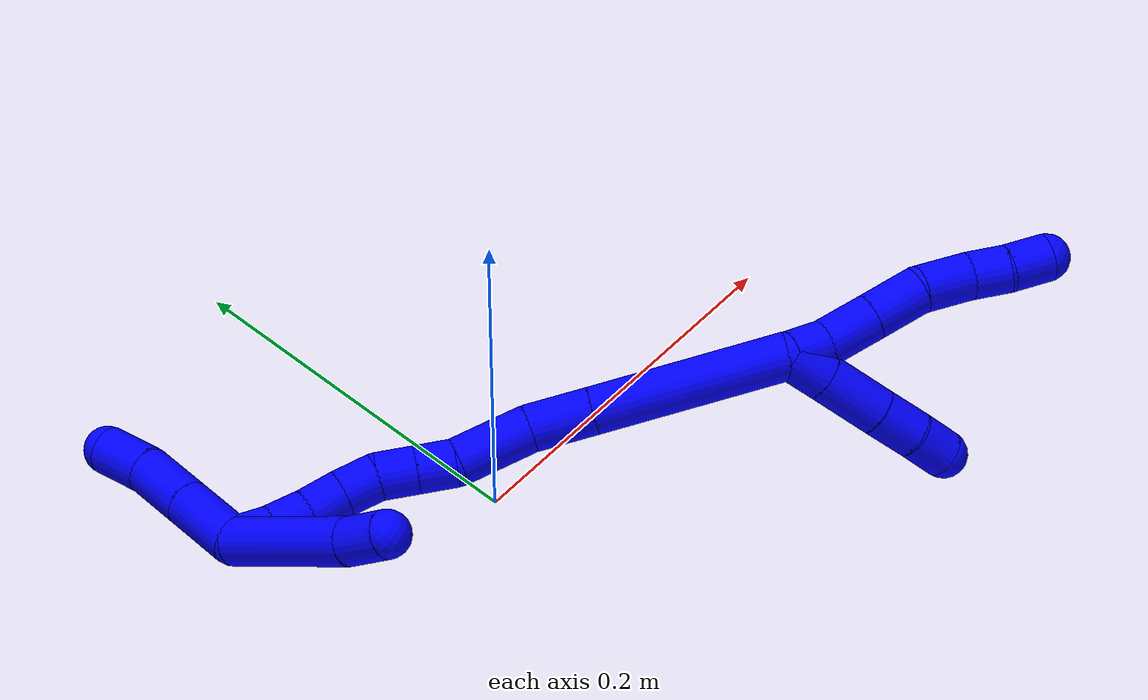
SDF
<sdf version="1.7">
 <world name="default">
  <model name="1">
   <static>0</static>
   <link name="1">
    <collision name="collision-cylinder-e_1_2_8">
     <pose>-0.002913 -0.007283 0.00649 0.842965 -0.290211 -0.130851</pose>
     <geometry><cylinder><radius>0.0125</radius><length>0.020362</length></cylinder></geometry>
     <surface>
      <friction><ode><mu>1.16</mu><mu2>1.16</mu2><slip1>0</slip1><slip2>0</slip2></ode></friction>
      <contact><ode><kp>1e+06</kp><kd>1</kd><max_vel>0</max_vel><min_depth>0.001</min_depth></ode></contact>
     </surface>
    </collision>
    <visual name="visual-cylinder-e_1_2_8">
     <pose>-0.002913 -0.007283 0.00649 0.842965 -0.290211 -0.130851</pose>
     <geometry><cylinder><radius>0.0125</radius><length>0.020362</length></cylinder></geometry>
     <material><ambient>0 0 1 1</ambient></material>
    </visual>
    <collision name="collision-cylinder-e_2_8_9">
     <pose>-0.008245 -0.026878 0.019595 1.07772 -0.171363 -0.102616</pose>
     <geometry><cylinder><radius>0.0125</radius><length>0.028367</length></cylinder></geometry>
     <surface>
      <friction><ode><mu>1.16</mu><mu2>1.16</mu2><slip1>0</slip1><slip2>0</slip2></ode></friction>
      <contact><ode><kp>1e+06</kp><kd>1</kd><max_vel>0</max_vel><min_depth>0.001</min_depth></ode></contact>
     </surface>
    </collision>
    <visual name="visual-cylinder-e_2_8_9">
     <pose>-0.008245 -0.026878 0.019595 1.07772 -0.171363 -0.102616</pose>
     <geometry><cylinder><radius>0.0125</radius><length>0.028367</length></cylinder></geometry>
     <material><ambient>0 0 1 1</ambient></material>
    </visual>
    <collision name="collision-cylinder-e_3_9_10">
     <pose>-0.013051 -0.051933 0.032923 1.08597 -0.164203 -0.099238</pose>
     <geometry><cylinder><radius>0.0125</radius><length>0.029202</length></cylinder></geometry>
     <surface>
      <friction><ode><mu>1.16</mu><mu2>1.16</mu2><slip1>0</slip1><slip2>0</slip2></ode></friction>
      <contact><ode><kp>1e+06</kp><kd>1</kd><max_vel>0</max_vel><min_depth>0.001</min_depth></ode></contact>
     </surface>
    </collision>
    <visual name="visual-cylinder-e_3_9_10">
     <pose>-0.013051 -0.051933 0.032923 1.08597 -0.164203 -0.099238</pose>
     <geometry><cylinder><radius>0.0125</radius><length>0.029202</length></cylinder></geometry>
     <material><ambient>0 0 1 1</ambient></material>
    </visual>
    <collision name="collision-cylinder-e_4_10_11">
     <pose>-0.018982 -0.074888 0.049337 0.811005 -0.24657 -0.106291</pose>
     <geometry><cylinder><radius>0.0125</radius><length>0.029046</length></cylinder></geometry>
     <surface>
      <friction><ode><mu>1.16</mu><mu2>1.16</mu2><slip1>0</slip1><slip2>0</slip2></ode></friction>
      <contact><ode><kp>1e+06</kp><kd>1</kd><max_vel>0</max_vel><min_depth>0.001</min_depth></ode></contact>
     </surface>
    </collision>
    <visual name="visual-cylinder-e_4_10_11">
     <pose>-0.018982 -0.074888 0.049337 0.811005 -0.24657 -0.106291</pose>
     <geometry><cylinder><radius>0.0125</radius><length>0.029046</length></cylinder></geometry>
     <material><ambient>0 0 1 1</ambient></material>
    </visual>
    <collision name="collision-cylinder-e_5_11_12">
     <pose>-0.022298 -0.092611 0.066355 0.798497 0.021772 0.009186</pose>
     <geometry><cylinder><radius>0.0125</radius><length>0.020981</length></cylinder></geometry>
     <surface>
      <friction><ode><mu>1.16</mu><mu2>1.16</mu2><slip1>0</slip1><slip2>0</slip2></ode></friction>
      <contact><ode><kp>1e+06</kp><kd>1</kd><max_vel>0</max_vel><min_depth>0.001</min_depth></ode></contact>
     </surface>
    </collision>
    <visual name="visual-cylinder-e_5_11_12">
     <pose>-0.022298 -0.092611 0.066355 0.798497 0.021772 0.009186</pose>
     <geometry><cylinder><radius>0.0125</radius><length>0.020981</length></cylinder></geometry>
     <material><ambient>0 0 1 1</ambient></material>
    </visual>
    <collision name="collision-cylinder-e_6_12_6">
     <pose>-0.023597 -0.108336 0.080864 0.851707 -0.138993 -0.06313</pose>
     <geometry><cylinder><radius>0.0125</radius><length>0.022043</length></cylinder></geometry>
     <surface>
      <friction><ode><mu>1.16</mu><mu2>1.16</mu2><slip1>0</slip1><slip2>0</slip2></ode></friction>
      <contact><ode><kp>1e+06</kp><kd>1</kd><max_vel>0</max_vel><min_depth>0.001</min_depth></ode></contact>
     </surface>
    </collision>
    <visual name="visual-cylinder-e_6_12_6">
     <pose>-0.023597 -0.108336 0.080864 0.851707 -0.138993 -0.06313</pose>
     <geometry><cylinder><radius>0.0125</radius><length>0.022043</length></cylinder></geometry>
     <material><ambient>0 0 1 1</ambient></material>
    </visual>
    <collision name="collision-cylinder-e_1_2_13">
     <pose>-7.9e-05 -0.000566 0.010878 0.051982 -0.007261 -0.000189</pose>
     <geometry><cylinder><radius>0.0125</radius><length>0.021787</length></cylinder></geometry>
     <surface>
      <friction><ode><mu>1.16</mu><mu2>1.16</mu2><slip1>0</slip1><slip2>0</slip2></ode></friction>
      <contact><ode><kp>1e+06</kp><kd>1</kd><max_vel>0</max_vel><min_depth>0.001</min_depth></ode></contact>
     </surface>
    </collision>
    <visual name="visual-cylinder-e_1_2_13">
     <pose>-7.9e-05 -0.000566 0.010878 0.051982 -0.007261 -0.000189</pose>
     <geometry><cylinder><radius>0.0125</radius><length>0.021787</length></cylinder></geometry>
     <material><ambient>0 0 1 1</ambient></material>
    </visual>
    <collision name="collision-cylinder-e_2_13_14">
     <pose>-0.000524 -0.001864 0.038762 0.04301 -0.021492 -0.000462</pose>
     <geometry><cylinder><radius>0.0125</radius><length>0.034051</length></cylinder></geometry>
     <surface>
      <friction><ode><mu>1.16</mu><mu2>1.16</mu2><slip1>0</slip1><slip2>0</slip2></ode></friction>
      <contact><ode><kp>1e+06</kp><kd>1</kd><max_vel>0</max_vel><min_depth>0.001</min_depth></ode></contact>
     </surface>
    </collision>
    <visual name="visual-cylinder-e_2_13_14">
     <pose>-0.000524 -0.001864 0.038762 0.04301 -0.021492 -0.000462</pose>
     <geometry><cylinder><radius>0.0125</radius><length>0.034051</length></cylinder></geometry>
     <material><ambient>0 0 1 1</ambient></material>
    </visual>
    <collision name="collision-cylinder-e_3_14_15">
     <pose>-0.001607 -0.003228 0.067601 0.053406 -0.060424 -0.001614</pose>
     <geometry><cylinder><radius>0.0125</radius><length>0.023743</length></cylinder></geometry>
     <surface>
      <friction><ode><mu>1.16</mu><mu2>1.16</mu2><slip1>0</slip1><slip2>0</slip2></ode></friction>
      <contact><ode><kp>1e+06</kp><kd>1</kd><max_vel>0</max_vel><min_depth>0.001</min_depth></ode></contact>
     </surface>
    </collision>
    <visual name="visual-cylinder-e_3_14_15">
     <pose>-0.001607 -0.003228 0.067601 0.053406 -0.060424 -0.001614</pose>
     <geometry><cylinder><radius>0.0125</radius><length>0.023743</length></cylinder></geometry>
     <material><ambient>0 0 1 1</ambient></material>
    </visual>
    <collision name="collision-cylinder-e_4_15_5">
     <pose>-0.004045 -0.004068 0.089495 0.020628 -0.169349 -0.001751</pose>
     <geometry><cylinder><radius>0.0125</radius><length>0.02042</length></cylinder></geometry>
     <surface>
      <friction><ode><mu>1.16</mu><mu2>1.16</mu2><slip1>0</slip1><slip2>0</slip2></ode></friction>
      <contact><ode><kp>1e+06</kp><kd>1</kd><max_vel>0</max_vel><min_depth>0.001</min_depth></ode></contact>
     </surface>
    </collision>
    <visual name="visual-cylinder-e_4_15_5">
     <pose>-0.004045 -0.004068 0.089495 0.020628 -0.169349 -0.001751</pose>
     <geometry><cylinder><radius>0.0125</radius><length>0.02042</length></cylinder></geometry>
     <material><ambient>0 0 1 1</ambient></material>
    </visual>
    <collision name="collision-cylinder-e_1_2_16">
     <pose>-0.008874 0.040572 -0.030516 -2.21567 -0.173048 0.34412</pose>
     <geometry><cylinder><radius>0.0125</radius><length>0.103074</length></cylinder></geometry>
     <surface>
      <friction><ode><mu>1.16</mu><mu2>1.16</mu2><slip1>0</slip1><slip2>0</slip2></ode></friction>
      <contact><ode><kp>1e+06</kp><kd>1</kd><max_vel>0</max_vel><min_depth>0.001</min_depth></ode></contact>
     </surface>
    </collision>
    <visual name="visual-cylinder-e_1_2_16">
     <pose>-0.008874 0.040572 -0.030516 -2.21567 -0.173048 0.34412</pose>
     <geometry><cylinder><radius>0.0125</radius><length>0.103074</length></cylinder></geometry>
     <material><ambient>0 0 1 1</ambient></material>
    </visual>
    <collision name="collision-cylinder-e_2_16_17">
     <pose>-0.020509 0.094542 -0.071236 -2.22167 -0.162504 0.325836</pose>
     <geometry><cylinder><radius>0.0125</radius><length>0.034132</length></cylinder></geometry>
     <surface>
      <friction><ode><mu>1.16</mu><mu2>1.16</mu2><slip1>0</slip1><slip2>0</slip2></ode></friction>
      <contact><ode><kp>1e+06</kp><kd>1</kd><max_vel>0</max_vel><min_depth>0.001</min_depth></ode></contact>
     </surface>
    </collision>
    <visual name="visual-cylinder-e_2_16_17">
     <pose>-0.020509 0.094542 -0.071236 -2.22167 -0.162504 0.325836</pose>
     <geometry><cylinder><radius>0.0125</radius><length>0.034132</length></cylinder></geometry>
     <material><ambient>0 0 1 1</ambient></material>
    </visual>
    <collision name="collision-cylinder-e_3_17_18">
     <pose>-0.020408 0.125329 -0.09238 -2.13241 0.138449 -0.249782</pose>
     <geometry><cylinder><radius>0.0125</radius><length>0.041485</length></cylinder></geometry>
     <surface>
      <friction><ode><mu>1.16</mu><mu2>1.16</mu2><slip1>0</slip1><slip2>0</slip2></ode></friction>
      <contact><ode><kp>1e+06</kp><kd>1</kd><max_vel>0</max_vel><min_depth>0.001</min_depth></ode></contact>
     </surface>
    </collision>
    <visual name="visual-cylinder-e_3_17_18">
     <pose>-0.020408 0.125329 -0.09238 -2.13241 0.138449 -0.249782</pose>
     <geometry><cylinder><radius>0.0125</radius><length>0.041485</length></cylinder></geometry>
     <material><ambient>0 0 1 1</ambient></material>
    </visual>
    <collision name="collision-cylinder-e_4_18_19">
     <pose>-0.018405 0.149902 -0.110306 -2.34208 -0.085612 0.202063</pose>
     <geometry><cylinder><radius>0.0125</radius><length>0.020116</length></cylinder></geometry>
     <surface>
      <friction><ode><mu>1.16</mu><mu2>1.16</mu2><slip1>0</slip1><slip2>0</slip2></ode></friction>
      <contact><ode><kp>1e+06</kp><kd>1</kd><max_vel>0</max_vel><min_depth>0.001</min_depth></ode></contact>
     </surface>
    </collision>
    <visual name="visual-cylinder-e_4_18_19">
     <pose>-0.018405 0.149902 -0.110306 -2.34208 -0.085612 0.202063</pose>
     <geometry><cylinder><radius>0.0125</radius><length>0.020116</length></cylinder></geometry>
     <material><ambient>0 0 1 1</ambient></material>
    </visual>
    <collision name="collision-cylinder-e_5_19_20">
     <pose>-0.020092 0.164316 -0.124351 -2.34434 -0.081622 0.193301</pose>
     <geometry><cylinder><radius>0.0125</radius><length>0.020275</length></cylinder></geometry>
     <surface>
      <friction><ode><mu>1.16</mu><mu2>1.16</mu2><slip1>0</slip1><slip2>0</slip2></ode></friction>
      <contact><ode><kp>1e+06</kp><kd>1</kd><max_vel>0</max_vel><min_depth>0.001</min_depth></ode></contact>
     </surface>
    </collision>
    <visual name="visual-cylinder-e_5_19_20">
     <pose>-0.020092 0.164316 -0.124351 -2.34434 -0.081622 0.193301</pose>
     <geometry><cylinder><radius>0.0125</radius><length>0.020275</length></cylinder></geometry>
     <material><ambient>0 0 1 1</ambient></material>
    </visual>
    <collision name="collision-cylinder-e_6_20_21">
     <pose>-0.02 0.180172 -0.136541 -2.10732 0.09118 -0.160081</pose>
     <geometry><cylinder><radius>0.0125</radius><length>0.020159</length></cylinder></geometry>
     <surface>
      <friction><ode><mu>1.16</mu><mu2>1.16</mu2><slip1>0</slip1><slip2>0</slip2></ode></friction>
      <contact><ode><kp>1e+06</kp><kd>1</kd><max_vel>0</max_vel><min_depth>0.001</min_depth></ode></contact>
     </surface>
    </collision>
    <visual name="visual-cylinder-e_6_20_21">
     <pose>-0.02 0.180172 -0.136541 -2.10732 0.09118 -0.160081</pose>
     <geometry><cylinder><radius>0.0125</radius><length>0.020159</length></cylinder></geometry>
     <material><ambient>0 0 1 1</ambient></material>
    </visual>
    <collision name="collision-cylinder-e_7_21_22">
     <pose>-0.016714 0.197509 -0.146569 -2.08304 0.232744 -0.3945</pose>
     <geometry><cylinder><radius>0.0125</radius><length>0.020538</length></cylinder></geometry>
     <surface>
      <friction><ode><mu>1.16</mu><mu2>1.16</mu2><slip1>0</slip1><slip2>0</slip2></ode></friction>
      <contact><ode><kp>1e+06</kp><kd>1</kd><max_vel>0</max_vel><min_depth>0.001</min_depth></ode></contact>
     </surface>
    </collision>
    <visual name="visual-cylinder-e_7_21_22">
     <pose>-0.016714 0.197509 -0.146569 -2.08304 0.232744 -0.3945</pose>
     <geometry><cylinder><radius>0.0125</radius><length>0.020538</length></cylinder></geometry>
     <material><ambient>0 0 1 1</ambient></material>
    </visual>
    <collision name="collision-cylinder-e_8_22_23">
     <pose>-0.011712 0.21426 -0.156993 -2.17285 0.263652 -0.49371</pose>
     <geometry><cylinder><radius>0.0125</radius><length>0.020212</length></cylinder></geometry>
     <surface>
      <friction><ode><mu>1.16</mu><mu2>1.16</mu2><slip1>0</slip1><slip2>0</slip2></ode></friction>
      <contact><ode><kp>1e+06</kp><kd>1</kd><max_vel>0</max_vel><min_depth>0.001</min_depth></ode></contact>
     </surface>
    </collision>
    <visual name="visual-cylinder-e_8_22_23">
     <pose>-0.011712 0.21426 -0.156993 -2.17285 0.263652 -0.49371</pose>
     <geometry><cylinder><radius>0.0125</radius><length>0.020212</length></cylinder></geometry>
     <material><ambient>0 0 1 1</ambient></material>
    </visual>
    <collision name="collision-cylinder-e_9_23_1">
     <pose>-0.007127 0.229667 -0.169001 -2.2925 0.196298 -0.42895</pose>
     <geometry><cylinder><radius>0.0125</radius><length>0.020009</length></cylinder></geometry>
     <surface>
      <friction><ode><mu>1.16</mu><mu2>1.16</mu2><slip1>0</slip1><slip2>0</slip2></ode></friction>
      <contact><ode><kp>1e+06</kp><kd>1</kd><max_vel>0</max_vel><min_depth>0.001</min_depth></ode></contact>
     </surface>
    </collision>
    <visual name="visual-cylinder-e_9_23_1">
     <pose>-0.007127 0.229667 -0.169001 -2.2925 0.196298 -0.42895</pose>
     <geometry><cylinder><radius>0.0125</radius><length>0.020009</length></cylinder></geometry>
     <material><ambient>0 0 1 1</ambient></material>
    </visual>
    <collision name="collision-cylinder-e_1_1_24">
     <pose>0.020884 0.217391 -0.157831 0.838706 0.778755 0.361845</pose>
     <geometry><cylinder><radius>0.0125</radius><length>0.074202</length></cylinder></geometry>
     <surface>
      <friction><ode><mu>1.16</mu><mu2>1.16</mu2><slip1>0</slip1><slip2>0</slip2></ode></friction>
      <contact><ode><kp>1e+06</kp><kd>1</kd><max_vel>0</max_vel><min_depth>0.001</min_depth></ode></contact>
     </surface>
    </collision>
    <visual name="visual-cylinder-e_1_1_24">
     <pose>0.020884 0.217391 -0.157831 0.838706 0.778755 0.361845</pose>
     <geometry><cylinder><radius>0.0125</radius><length>0.074202</length></cylinder></geometry>
     <material><ambient>0 0 1 1</ambient></material>
    </visual>
    <collision name="collision-cylinder-e_2_24_4">
     <pose>0.05611 0.189824 -0.13576 1.06211 0.790443 0.480574</pose>
     <geometry><cylinder><radius>0.0125</radius><length>0.025798</length></cylinder></geometry>
     <surface>
      <friction><ode><mu>1.16</mu><mu2>1.16</mu2><slip1>0</slip1><slip2>0</slip2></ode></friction>
      <contact><ode><kp>1e+06</kp><kd>1</kd><max_vel>0</max_vel><min_depth>0.001</min_depth></ode></contact>
     </surface>
    </collision>
    <visual name="visual-cylinder-e_2_24_4">
     <pose>0.05611 0.189824 -0.13576 1.06211 0.790443 0.480574</pose>
     <geometry><cylinder><radius>0.0125</radius><length>0.025798</length></cylinder></geometry>
     <material><ambient>0 0 1 1</ambient></material>
    </visual>
    <collision name="collision-cylinder-e_1_1_25">
     <pose>-0.01978 0.237699 -0.187567 -3.08655 -0.878855 3.02461</pose>
     <geometry><cylinder><radius>0.0125</radius><length>0.037934</length></cylinder></geometry>
     <surface>
      <friction><ode><mu>1.16</mu><mu2>1.16</mu2><slip1>0</slip1><slip2>0</slip2></ode></friction>
      <contact><ode><kp>1e+06</kp><kd>1</kd><max_vel>0</max_vel><min_depth>0.001</min_depth></ode></contact>
     </surface>
    </collision>
    <visual name="visual-cylinder-e_1_1_25">
     <pose>-0.01978 0.237699 -0.187567 -3.08655 -0.878855 3.02461</pose>
     <geometry><cylinder><radius>0.0125</radius><length>0.037934</length></cylinder></geometry>
     <material><ambient>0 0 1 1</ambient></material>
    </visual>
    <collision name="collision-cylinder-e_2_25_26">
     <pose>-0.047359 0.238949 -0.210486 -3.08774 -0.874237 3.02644</pose>
     <geometry><cylinder><radius>0.0125</radius><length>0.033827</length></cylinder></geometry>
     <surface>
      <friction><ode><mu>1.16</mu><mu2>1.16</mu2><slip1>0</slip1><slip2>0</slip2></ode></friction>
      <contact><ode><kp>1e+06</kp><kd>1</kd><max_vel>0</max_vel><min_depth>0.001</min_depth></ode></contact>
     </surface>
    </collision>
    <visual name="visual-cylinder-e_2_25_26">
     <pose>-0.047359 0.238949 -0.210486 -3.08774 -0.874237 3.02644</pose>
     <geometry><cylinder><radius>0.0125</radius><length>0.033827</length></cylinder></geometry>
     <material><ambient>0 0 1 1</ambient></material>
    </visual>
    <collision name="collision-cylinder-e_3_26_3">
     <pose>-0.070276 0.242446 -0.230913 -2.84671 -0.781318 2.44936</pose>
     <geometry><cylinder><radius>0.0125</radius><length>0.028238</length></cylinder></geometry>
     <surface>
      <friction><ode><mu>1.16</mu><mu2>1.16</mu2><slip1>0</slip1><slip2>0</slip2></ode></friction>
      <contact><ode><kp>1e+06</kp><kd>1</kd><max_vel>0</max_vel><min_depth>0.001</min_depth></ode></contact>
     </surface>
    </collision>
    <visual name="visual-cylinder-e_3_26_3">
     <pose>-0.070276 0.242446 -0.230913 -2.84671 -0.781318 2.44936</pose>
     <geometry><cylinder><radius>0.0125</radius><length>0.028238</length></cylinder></geometry>
     <material><ambient>0 0 1 1</ambient></material>
    </visual>
    <collision name="collision-sphere-3">
     <pose>-0.080219 0.245359 -0.240505 0 -0 0</pose>
     <geometry><sphere><radius>0.0125</radius></sphere></geometry>
     <surface>
      <friction><ode><mu>1.16</mu><mu2>1.16</mu2><slip1>0</slip1><slip2>0</slip2></ode></friction>
      <contact><ode><kp>1e+06</kp><kd>1</kd><max_vel>0</max_vel><min_depth>0.001</min_depth></ode></contact>
     </surface>
    </collision>
    <visual name="visual-sphere-3">
     <pose>-0.080219 0.245359 -0.240505 0 -0 0</pose>
     <geometry><sphere><radius>0.0125</radius></sphere></geometry>
     <material><ambient>0 0 1 1</ambient></material>
    </visual>
    <collision name="collision-sphere-26">
     <pose>-0.060333 0.239533 -0.221322 0 -0 0</pose>
     <geometry><sphere><radius>0.0125</radius></sphere></geometry>
     <surface>
      <friction><ode><mu>1.16</mu><mu2>1.16</mu2><slip1>0</slip1><slip2>0</slip2></ode></friction>
      <contact><ode><kp>1e+06</kp><kd>1</kd><max_vel>0</max_vel><min_depth>0.001</min_depth></ode></contact>
     </surface>
    </collision>
    <visual name="visual-sphere-26">
     <pose>-0.060333 0.239533 -0.221322 0 -0 0</pose>
     <geometry><sphere><radius>0.0125</radius></sphere></geometry>
     <material><ambient>0 0 1 1</ambient></material>
    </visual>
    <collision name="collision-sphere-25">
     <pose>-0.034385 0.238365 -0.19965 0 -0 0</pose>
     <geometry><sphere><radius>0.0125</radius></sphere></geometry>
     <surface>
      <friction><ode><mu>1.16</mu><mu2>1.16</mu2><slip1>0</slip1><slip2>0</slip2></ode></friction>
      <contact><ode><kp>1e+06</kp><kd>1</kd><max_vel>0</max_vel><min_depth>0.001</min_depth></ode></contact>
     </surface>
    </collision>
    <visual name="visual-sphere-25">
     <pose>-0.034385 0.238365 -0.19965 0 -0 0</pose>
     <geometry><sphere><radius>0.0125</radius></sphere></geometry>
     <material><ambient>0 0 1 1</ambient></material>
    </visual>
    <collision name="collision-sphere-4">
     <pose>0.065277 0.181898 -0.13134 0 -0 0</pose>
     <geometry><sphere><radius>0.0125</radius></sphere></geometry>
     <surface>
      <friction><ode><mu>1.16</mu><mu2>1.16</mu2><slip1>0</slip1><slip2>0</slip2></ode></friction>
      <contact><ode><kp>1e+06</kp><kd>1</kd><max_vel>0</max_vel><min_depth>0.001</min_depth></ode></contact>
     </surface>
    </collision>
    <visual name="visual-sphere-4">
     <pose>0.065277 0.181898 -0.13134 0 -0 0</pose>
     <geometry><sphere><radius>0.0125</radius></sphere></geometry>
     <material><ambient>0 0 1 1</ambient></material>
    </visual>
    <collision name="collision-sphere-24">
     <pose>0.046943 0.19775 -0.14018 0 -0 0</pose>
     <geometry><sphere><radius>0.0125</radius></sphere></geometry>
     <surface>
      <friction><ode><mu>1.16</mu><mu2>1.16</mu2><slip1>0</slip1><slip2>0</slip2></ode></friction>
      <contact><ode><kp>1e+06</kp><kd>1</kd><max_vel>0</max_vel><min_depth>0.001</min_depth></ode></contact>
     </surface>
    </collision>
    <visual name="visual-sphere-24">
     <pose>0.046943 0.19775 -0.14018 0 -0 0</pose>
     <geometry><sphere><radius>0.0125</radius></sphere></geometry>
     <material><ambient>0 0 1 1</ambient></material>
    </visual>
    <collision name="collision-sphere-1">
     <pose>-0.005175 0.237033 -0.175483 0 -0 0</pose>
     <geometry><sphere><radius>0.0125</radius></sphere></geometry>
     <surface>
      <friction><ode><mu>1.16</mu><mu2>1.16</mu2><slip1>0</slip1><slip2>0</slip2></ode></friction>
      <contact><ode><kp>1e+06</kp><kd>1</kd><max_vel>0</max_vel><min_depth>0.001</min_depth></ode></contact>
     </surface>
    </collision>
    <visual name="visual-sphere-1">
     <pose>-0.005175 0.237033 -0.175483 0 -0 0</pose>
     <geometry><sphere><radius>0.0125</radius></sphere></geometry>
     <material><ambient>0 0 1 1</ambient></material>
    </visual>
    <collision name="collision-sphere-23">
     <pose>-0.009078 0.222301 -0.162518 0 -0 0</pose>
     <geometry><sphere><radius>0.0125</radius></sphere></geometry>
     <surface>
      <friction><ode><mu>1.16</mu><mu2>1.16</mu2><slip1>0</slip1><slip2>0</slip2></ode></friction>
      <contact><ode><kp>1e+06</kp><kd>1</kd><max_vel>0</max_vel><min_depth>0.001</min_depth></ode></contact>
     </surface>
    </collision>
    <visual name="visual-sphere-23">
     <pose>-0.009078 0.222301 -0.162518 0 -0 0</pose>
     <geometry><sphere><radius>0.0125</radius></sphere></geometry>
     <material><ambient>0 0 1 1</ambient></material>
    </visual>
    <collision name="collision-sphere-22">
     <pose>-0.014345 0.206219 -0.151467 0 -0 0</pose>
     <geometry><sphere><radius>0.0125</radius></sphere></geometry>
     <surface>
      <friction><ode><mu>1.16</mu><mu2>1.16</mu2><slip1>0</slip1><slip2>0</slip2></ode></friction>
      <contact><ode><kp>1e+06</kp><kd>1</kd><max_vel>0</max_vel><min_depth>0.001</min_depth></ode></contact>
     </surface>
    </collision>
    <visual name="visual-sphere-22">
     <pose>-0.014345 0.206219 -0.151467 0 -0 0</pose>
     <geometry><sphere><radius>0.0125</radius></sphere></geometry>
     <material><ambient>0 0 1 1</ambient></material>
    </visual>
    <collision name="collision-sphere-21">
     <pose>-0.019082 0.188799 -0.141672 0 -0 0</pose>
     <geometry><sphere><radius>0.0125</radius></sphere></geometry>
     <surface>
      <friction><ode><mu>1.16</mu><mu2>1.16</mu2><slip1>0</slip1><slip2>0</slip2></ode></friction>
      <contact><ode><kp>1e+06</kp><kd>1</kd><max_vel>0</max_vel><min_depth>0.001</min_depth></ode></contact>
     </surface>
    </collision>
    <visual name="visual-sphere-21">
     <pose>-0.019082 0.188799 -0.141672 0 -0 0</pose>
     <geometry><sphere><radius>0.0125</radius></sphere></geometry>
     <material><ambient>0 0 1 1</ambient></material>
    </visual>
    <collision name="collision-sphere-12">
     <pose>-0.02207 -0.100124 0.073674 0 -0 0</pose>
     <geometry><sphere><radius>0.0125</radius></sphere></geometry>
     <surface>
      <friction><ode><mu>1.16</mu><mu2>1.16</mu2><slip1>0</slip1><slip2>0</slip2></ode></friction>
      <contact><ode><kp>1e+06</kp><kd>1</kd><max_vel>0</max_vel><min_depth>0.001</min_depth></ode></contact>
     </surface>
    </collision>
    <visual name="visual-sphere-12">
     <pose>-0.02207 -0.100124 0.073674 0 -0 0</pose>
     <geometry><sphere><radius>0.0125</radius></sphere></geometry>
     <material><ambient>0 0 1 1</ambient></material>
    </visual>
    <collision name="collision-sphere-11">
     <pose>-0.022527 -0.085098 0.059037 0 -0 0</pose>
     <geometry><sphere><radius>0.0125</radius></sphere></geometry>
     <surface>
      <friction><ode><mu>1.16</mu><mu2>1.16</mu2><slip1>0</slip1><slip2>0</slip2></ode></friction>
      <contact><ode><kp>1e+06</kp><kd>1</kd><max_vel>0</max_vel><min_depth>0.001</min_depth></ode></contact>
     </surface>
    </collision>
    <visual name="visual-sphere-11">
     <pose>-0.022527 -0.085098 0.059037 0 -0 0</pose>
     <geometry><sphere><radius>0.0125</radius></sphere></geometry>
     <material><ambient>0 0 1 1</ambient></material>
    </visual>
    <collision name="collision-sphere-10">
     <pose>-0.015437 -0.064678 0.039636 0 -0 0</pose>
     <geometry><sphere><radius>0.0125</radius></sphere></geometry>
     <surface>
      <friction><ode><mu>1.16</mu><mu2>1.16</mu2><slip1>0</slip1><slip2>0</slip2></ode></friction>
      <contact><ode><kp>1e+06</kp><kd>1</kd><max_vel>0</max_vel><min_depth>0.001</min_depth></ode></contact>
     </surface>
    </collision>
    <visual name="visual-sphere-10">
     <pose>-0.015437 -0.064678 0.039636 0 -0 0</pose>
     <geometry><sphere><radius>0.0125</radius></sphere></geometry>
     <material><ambient>0 0 1 1</ambient></material>
    </visual>
    <collision name="collision-sphere-9">
     <pose>-0.010664 -0.039188 0.02621 0 -0 0</pose>
     <geometry><sphere><radius>0.0125</radius></sphere></geometry>
     <surface>
      <friction><ode><mu>1.16</mu><mu2>1.16</mu2><slip1>0</slip1><slip2>0</slip2></ode></friction>
      <contact><ode><kp>1e+06</kp><kd>1</kd><max_vel>0</max_vel><min_depth>0.001</min_depth></ode></contact>
     </surface>
    </collision>
    <visual name="visual-sphere-9">
     <pose>-0.010664 -0.039188 0.02621 0 -0 0</pose>
     <geometry><sphere><radius>0.0125</radius></sphere></geometry>
     <material><ambient>0 0 1 1</ambient></material>
    </visual>
    <collision name="collision-sphere-2">
     <geometry><sphere><radius>0.0125</radius></sphere></geometry>
     <surface>
      <friction><ode><mu>1.16</mu><mu2>1.16</mu2><slip1>0</slip1><slip2>0</slip2></ode></friction>
      <contact><ode><kp>1e+06</kp><kd>1</kd><max_vel>0</max_vel><min_depth>0.001</min_depth></ode></contact>
     </surface>
    </collision>
    <visual name="visual-sphere-2">
     <geometry><sphere><radius>0.0125</radius></sphere></geometry>
     <material><ambient>0 0 1 1</ambient></material>
    </visual>
    <collision name="collision-sphere-19">
     <pose>-0.019265 0.157087 -0.117292 0 -0 0</pose>
     <geometry><sphere><radius>0.0125</radius></sphere></geometry>
     <surface>
      <friction><ode><mu>1.16</mu><mu2>1.16</mu2><slip1>0</slip1><slip2>0</slip2></ode></friction>
      <contact><ode><kp>1e+06</kp><kd>1</kd><max_vel>0</max_vel><min_depth>0.001</min_depth></ode></contact>
     </surface>
    </collision>
    <visual name="visual-sphere-19">
     <pose>-0.019265 0.157087 -0.117292 0 -0 0</pose>
     <geometry><sphere><radius>0.0125</radius></sphere></geometry>
     <material><ambient>0 0 1 1</ambient></material>
    </visual>
    <collision name="collision-sphere-8">
     <pose>-0.005827 -0.014567 0.012979 0 -0 0</pose>
     <geometry><sphere><radius>0.0125</radius></sphere></geometry>
     <surface>
      <friction><ode><mu>1.16</mu><mu2>1.16</mu2><slip1>0</slip1><slip2>0</slip2></ode></friction>
      <contact><ode><kp>1e+06</kp><kd>1</kd><max_vel>0</max_vel><min_depth>0.001</min_depth></ode></contact>
     </surface>
    </collision>
    <visual name="visual-sphere-8">
     <pose>-0.005827 -0.014567 0.012979 0 -0 0</pose>
     <geometry><sphere><radius>0.0125</radius></sphere></geometry>
     <material><ambient>0 0 1 1</ambient></material>
    </visual>
    <collision name="collision-sphere-6">
     <pose>-0.025124 -0.116549 0.088053 0 -0 0</pose>
     <geometry><sphere><radius>0.0125</radius></sphere></geometry>
     <surface>
      <friction><ode><mu>1.16</mu><mu2>1.16</mu2><slip1>0</slip1><slip2>0</slip2></ode></friction>
      <contact><ode><kp>1e+06</kp><kd>1</kd><max_vel>0</max_vel><min_depth>0.001</min_depth></ode></contact>
     </surface>
    </collision>
    <visual name="visual-sphere-6">
     <pose>-0.025124 -0.116549 0.088053 0 -0 0</pose>
     <geometry><sphere><radius>0.0125</radius></sphere></geometry>
     <material><ambient>0 0 1 1</ambient></material>
    </visual>
    <collision name="collision-sphere-13">
     <pose>-0.000158 -0.001132 0.021757 0 -0 0</pose>
     <geometry><sphere><radius>0.0125</radius></sphere></geometry>
     <surface>
      <friction><ode><mu>1.16</mu><mu2>1.16</mu2><slip1>0</slip1><slip2>0</slip2></ode></friction>
      <contact><ode><kp>1e+06</kp><kd>1</kd><max_vel>0</max_vel><min_depth>0.001</min_depth></ode></contact>
     </surface>
    </collision>
    <visual name="visual-sphere-13">
     <pose>-0.000158 -0.001132 0.021757 0 -0 0</pose>
     <geometry><sphere><radius>0.0125</radius></sphere></geometry>
     <material><ambient>0 0 1 1</ambient></material>
    </visual>
    <collision name="collision-sphere-14">
     <pose>-0.00089 -0.002596 0.055768 0 -0 0</pose>
     <geometry><sphere><radius>0.0125</radius></sphere></geometry>
     <surface>
      <friction><ode><mu>1.16</mu><mu2>1.16</mu2><slip1>0</slip1><slip2>0</slip2></ode></friction>
      <contact><ode><kp>1e+06</kp><kd>1</kd><max_vel>0</max_vel><min_depth>0.001</min_depth></ode></contact>
     </surface>
    </collision>
    <visual name="visual-sphere-14">
     <pose>-0.00089 -0.002596 0.055768 0 -0 0</pose>
     <geometry><sphere><radius>0.0125</radius></sphere></geometry>
     <material><ambient>0 0 1 1</ambient></material>
    </visual>
    <collision name="collision-sphere-15">
     <pose>-0.002324 -0.003861 0.079433 0 -0 0</pose>
     <geometry><sphere><radius>0.0125</radius></sphere></geometry>
     <surface>
      <friction><ode><mu>1.16</mu><mu2>1.16</mu2><slip1>0</slip1><slip2>0</slip2></ode></friction>
      <contact><ode><kp>1e+06</kp><kd>1</kd><max_vel>0</max_vel><min_depth>0.001</min_depth></ode></contact>
     </surface>
    </collision>
    <visual name="visual-sphere-15">
     <pose>-0.002324 -0.003861 0.079433 0 -0 0</pose>
     <geometry><sphere><radius>0.0125</radius></sphere></geometry>
     <material><ambient>0 0 1 1</ambient></material>
    </visual>
    <collision name="collision-sphere-5">
     <pose>-0.005765 -0.004276 0.099557 0 -0 0</pose>
     <geometry><sphere><radius>0.0125</radius></sphere></geometry>
     <surface>
      <friction><ode><mu>1.16</mu><mu2>1.16</mu2><slip1>0</slip1><slip2>0</slip2></ode></friction>
      <contact><ode><kp>1e+06</kp><kd>1</kd><max_vel>0</max_vel><min_depth>0.001</min_depth></ode></contact>
     </surface>
    </collision>
    <visual name="visual-sphere-5">
     <pose>-0.005765 -0.004276 0.099557 0 -0 0</pose>
     <geometry><sphere><radius>0.0125</radius></sphere></geometry>
     <material><ambient>0 0 1 1</ambient></material>
    </visual>
    <collision name="collision-sphere-16">
     <pose>-0.017748 0.081144 -0.061032 0 -0 0</pose>
     <geometry><sphere><radius>0.0125</radius></sphere></geometry>
     <surface>
      <friction><ode><mu>1.16</mu><mu2>1.16</mu2><slip1>0</slip1><slip2>0</slip2></ode></friction>
      <contact><ode><kp>1e+06</kp><kd>1</kd><max_vel>0</max_vel><min_depth>0.001</min_depth></ode></contact>
     </surface>
    </collision>
    <visual name="visual-sphere-16">
     <pose>-0.017748 0.081144 -0.061032 0 -0 0</pose>
     <geometry><sphere><radius>0.0125</radius></sphere></geometry>
     <material><ambient>0 0 1 1</ambient></material>
    </visual>
    <collision name="collision-sphere-17">
     <pose>-0.02327 0.107941 -0.08144 0 -0 0</pose>
     <geometry><sphere><radius>0.0125</radius></sphere></geometry>
     <surface>
      <friction><ode><mu>1.16</mu><mu2>1.16</mu2><slip1>0</slip1><slip2>0</slip2></ode></friction>
      <contact><ode><kp>1e+06</kp><kd>1</kd><max_vel>0</max_vel><min_depth>0.001</min_depth></ode></contact>
     </surface>
    </collision>
    <visual name="visual-sphere-17">
     <pose>-0.02327 0.107941 -0.08144 0 -0 0</pose>
     <geometry><sphere><radius>0.0125</radius></sphere></geometry>
     <material><ambient>0 0 1 1</ambient></material>
    </visual>
    <collision name="collision-sphere-18">
     <pose>-0.017545 0.142717 -0.103321 0 -0 0</pose>
     <geometry><sphere><radius>0.0125</radius></sphere></geometry>
     <surface>
      <friction><ode><mu>1.16</mu><mu2>1.16</mu2><slip1>0</slip1><slip2>0</slip2></ode></friction>
      <contact><ode><kp>1e+06</kp><kd>1</kd><max_vel>0</max_vel><min_depth>0.001</min_depth></ode></contact>
     </surface>
    </collision>
    <visual name="visual-sphere-18">
     <pose>-0.017545 0.142717 -0.103321 0 -0 0</pose>
     <geometry><sphere><radius>0.0125</radius></sphere></geometry>
     <material><ambient>0 0 1 1</ambient></material>
    </visual>
    <collision name="collision-sphere-20">
     <pose>-0.020918 0.171545 -0.13141 0 -0 0</pose>
     <geometry><sphere><radius>0.0125</radius></sphere></geometry>
     <surface>
      <friction><ode><mu>1.16</mu><mu2>1.16</mu2><slip1>0</slip1><slip2>0</slip2></ode></friction>
      <contact><ode><kp>1e+06</kp><kd>1</kd><max_vel>0</max_vel><min_depth>0.001</min_depth></ode></contact>
     </surface>
    </collision>
    <visual name="visual-sphere-20">
     <pose>-0.020918 0.171545 -0.13141 0 -0 0</pose>
     <geometry><sphere><radius>0.0125</radius></sphere></geometry>
     <material><ambient>0 0 1 1</ambient></material>
    </visual>
    <inertial>
     <pose>-0.010744 0.095166 -0.068253 0 -0 0</pose>
     <mass>0.75</mass>
     <inertia><ixx>0.000187</ixx><ixy>0</ixy><ixz>0</ixz><iyy>4.9e-05</iyy><iyz>0</iyz><izz>-6e-05</izz></inertia>
    </inertial>
   </link>
   <pose>0.131197 -0.082867 0.06702 -2.34659 -0.677603 -2.19586</pose>
  </model>
 </world>
</sdf>
